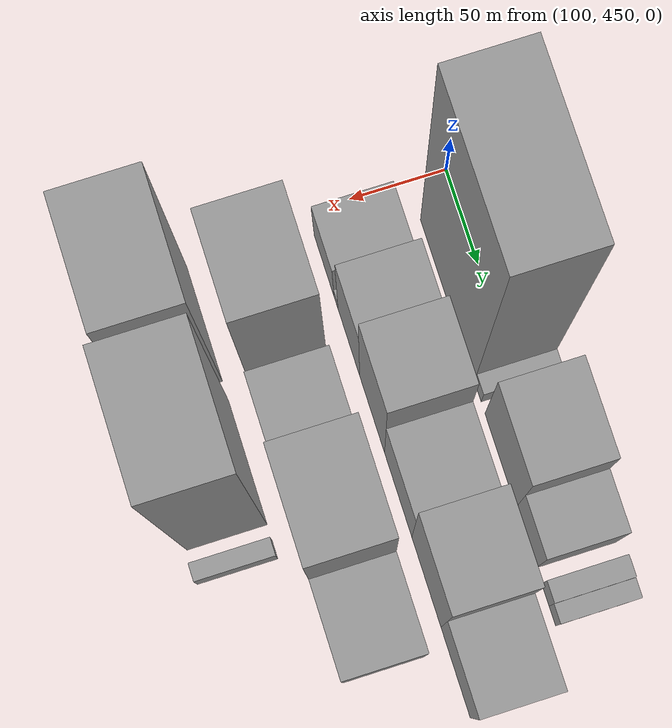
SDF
<sdf version="1.6">
 <world name="default">
  <model name="building_45">
   <static>1</static>
   <pose>100.0000 512.6496 0 0.000000 0.000000 0.000000</pose>
   <link name="link">
    <pose>0 0 112.50 0 0 0</pose>
    <collision name="collision"><geometry><box><size>40.0000 84.5545 225.0000</size></box></geometry></collision>
    <visual name="visual">
     <cast_shadows>0</cast_shadows>
     <geometry><box><size>40.0000 84.5545 225.0000</size></box></geometry>
     <material>
      <script>
       <uri>model://grey_wall/materials/scripts</uri>
       <uri>model://grey_wall/materials/textures</uri>
       <name>vrc/grey_wall</name>
      </script>
     </material>
    </visual>
   </link>
  </model>
  <model name="building_46">
   <static>1</static>
   <pose>100.0000 560.1286 0 0.000000 0.000000 0.000000</pose>
   <link name="link">
    <pose>0 0 10.50 0 0 0</pose>
    <collision name="collision"><geometry><box><size>40.0000 10.4033 21.0000</size></box></geometry></collision>
    <visual name="visual">
     <cast_shadows>0</cast_shadows>
     <geometry><box><size>40.0000 10.4033 21.0000</size></box></geometry>
     <material>
      <script>
       <uri>model://grey_wall/materials/scripts</uri>
       <uri>model://grey_wall/materials/textures</uri>
       <name>vrc/grey_wall</name>
      </script>
     </material>
    </visual>
   </link>
  </model>
  <model name="building_47">
   <static>1</static>
   <pose>100.0000 595.1719 0 0.000000 0.000000 0.000000</pose>
   <link name="link">
    <pose>0 0 45.00 0 0 0</pose>
    <collision name="collision"><geometry><box><size>40.0000 47.6834 90.0000</size></box></geometry></collision>
    <visual name="visual">
     <cast_shadows>0</cast_shadows>
     <geometry><box><size>40.0000 47.6834 90.0000</size></box></geometry>
     <material>
      <script>
       <uri>model://grey_wall/materials/scripts</uri>
       <uri>model://grey_wall/materials/textures</uri>
       <name>vrc/grey_wall</name>
      </script>
     </material>
    </visual>
   </link>
  </model>
  <model name="building_48">
   <static>1</static>
   <pose>100.0000 634.2060 0 0.000000 0.000000 0.000000</pose>
   <link name="link">
    <pose>0 0 27.00 0 0 0</pose>
    <collision name="collision"><geometry><box><size>40.0000 30.3847 54.0000</size></box></geometry></collision>
    <visual name="visual">
     <cast_shadows>0</cast_shadows>
     <geometry><box><size>40.0000 30.3847 54.0000</size></box></geometry>
     <material>
      <script>
       <uri>model://grey_wall/materials/scripts</uri>
       <uri>model://grey_wall/materials/textures</uri>
       <name>vrc/grey_wall</name>
      </script>
     </material>
    </visual>
   </link>
  </model>
  <model name="building_49">
   <static>1</static>
   <pose>100.0000 662.9370 0 0.000000 0.000000 0.000000</pose>
   <link name="link">
    <pose>0 0 13.50 0 0 0</pose>
    <collision name="collision"><geometry><box><size>40.0000 11.0773 27.0000</size></box></geometry></collision>
    <visual name="visual">
     <cast_shadows>0</cast_shadows>
     <geometry><box><size>40.0000 11.0773 27.0000</size></box></geometry>
     <material>
      <script>
       <uri>model://grey_wall/materials/scripts</uri>
       <uri>model://grey_wall/materials/textures</uri>
       <name>vrc/grey_wall</name>
      </script>
     </material>
    </visual>
   </link>
  </model>
  <model name="building_50">
   <static>1</static>
   <pose>100.0000 673.3901 0 0.000000 0.000000 0.000000</pose>
   <link name="link">
    <pose>0 0 12.00 0 0 0</pose>
    <collision name="collision"><geometry><box><size>40.0000 9.8288 24.0000</size></box></geometry></collision>
    <visual name="visual">
     <cast_shadows>0</cast_shadows>
     <geometry><box><size>40.0000 9.8288 24.0000</size></box></geometry>
     <material>
      <script>
       <uri>model://grey_wall/materials/scripts</uri>
       <uri>model://grey_wall/materials/textures</uri>
       <name>vrc/grey_wall</name>
      </script>
     </material>
    </visual>
   </link>
  </model>
  <model name="building_101">
   <static>1</static>
   <pose>152.0000 478.1528 0 0.000000 0.000000 0.000000</pose>
   <link name="link">
    <pose>0 0 27.00 0 0 0</pose>
    <collision name="collision"><geometry><box><size>40.0000 32.0204 54.0000</size></box></geometry></collision>
    <visual name="visual">
     <cast_shadows>0</cast_shadows>
     <geometry><box><size>40.0000 32.0204 54.0000</size></box></geometry>
     <material>
      <script>
       <uri>model://grey_wall/materials/scripts</uri>
       <uri>model://grey_wall/materials/textures</uri>
       <name>vrc/grey_wall</name>
      </script>
     </material>
    </visual>
   </link>
  </model>
  <model name="building_102">
   <static>1</static>
   <pose>152.0000 497.4850 0 0.000000 0.000000 0.000000</pose>
   <link name="link">
    <pose>0 0 7.50 0 0 0</pose>
    <collision name="collision"><geometry><box><size>40.0000 6.6440 15.0000</size></box></geometry></collision>
    <visual name="visual">
     <cast_shadows>0</cast_shadows>
     <geometry><box><size>40.0000 6.6440 15.0000</size></box></geometry>
     <material>
      <script>
       <uri>model://grey_wall/materials/scripts</uri>
       <uri>model://grey_wall/materials/textures</uri>
       <name>vrc/grey_wall</name>
      </script>
     </material>
    </visual>
   </link>
  </model>
  <model name="building_103">
   <static>1</static>
   <pose>152.0000 518.0880 0 0.000000 0.000000 0.000000</pose>
   <link name="link">
    <pose>0 0 46.50 0 0 0</pose>
    <collision name="collision"><geometry><box><size>40.0000 34.5620 93.0000</size></box></geometry></collision>
    <visual name="visual">
     <cast_shadows>0</cast_shadows>
     <geometry><box><size>40.0000 34.5620 93.0000</size></box></geometry>
     <material>
      <script>
       <uri>model://grey_wall/materials/scripts</uri>
       <uri>model://grey_wall/materials/textures</uri>
       <name>vrc/grey_wall</name>
      </script>
     </material>
    </visual>
   </link>
  </model>
  <model name="building_104">
   <static>1</static>
   <pose>152.0000 555.0826 0 0.000000 0.000000 0.000000</pose>
   <link name="link">
    <pose>0 0 63.00 0 0 0</pose>
    <collision name="collision"><geometry><box><size>40.0000 39.4271 126.0000</size></box></geometry></collision>
    <visual name="visual">
     <cast_shadows>0</cast_shadows>
     <geometry><box><size>40.0000 39.4271 126.0000</size></box></geometry>
     <material>
      <script>
       <uri>model://grey_wall/materials/scripts</uri>
       <uri>model://grey_wall/materials/textures</uri>
       <name>vrc/grey_wall</name>
      </script>
     </material>
    </visual>
   </link>
  </model>
  <model name="building_105">
   <static>1</static>
   <pose>152.0000 596.1161 0 0.000000 0.000000 0.000000</pose>
   <link name="link">
    <pose>0 0 40.50 0 0 0</pose>
    <collision name="collision"><geometry><box><size>40.0000 42.6399 81.0000</size></box></geometry></collision>
    <visual name="visual">
     <cast_shadows>0</cast_shadows>
     <geometry><box><size>40.0000 42.6399 81.0000</size></box></geometry>
     <material>
      <script>
       <uri>model://grey_wall/materials/scripts</uri>
       <uri>model://grey_wall/materials/textures</uri>
       <name>vrc/grey_wall</name>
      </script>
     </material>
    </visual>
   </link>
  </model>
  <model name="building_106">
   <static>1</static>
   <pose>152.0000 639.8982 0 0.000000 0.000000 0.000000</pose>
   <link name="link">
    <pose>0 0 60.00 0 0 0</pose>
    <collision name="collision"><geometry><box><size>40.0000 44.9244 120.0000</size></box></geometry></collision>
    <visual name="visual">
     <cast_shadows>0</cast_shadows>
     <geometry><box><size>40.0000 44.9244 120.0000</size></box></geometry>
     <material>
      <script>
       <uri>model://grey_wall/materials/scripts</uri>
       <uri>model://grey_wall/materials/textures</uri>
       <name>vrc/grey_wall</name>
      </script>
     </material>
    </visual>
   </link>
  </model>
  <model name="building_107">
   <static>1</static>
   <pose>152.0000 684.5421 0 0.000000 0.000000 0.000000</pose>
   <link name="link">
    <pose>0 0 37.50 0 0 0</pose>
    <collision name="collision"><geometry><box><size>40.0000 44.3634 75.0000</size></box></geometry></collision>
    <visual name="visual">
     <cast_shadows>0</cast_shadows>
     <geometry><box><size>40.0000 44.3634 75.0000</size></box></geometry>
     <material>
      <script>
       <uri>model://grey_wall/materials/scripts</uri>
       <uri>model://grey_wall/materials/textures</uri>
       <name>vrc/grey_wall</name>
      </script>
     </material>
    </visual>
   </link>
  </model>
  <model name="building_150">
   <static>1</static>
   <pose>204.0000 494.8100 0 0.000000 0.000000 0.000000</pose>
   <link name="link">
    <pose>0 0 67.50 0 0 0</pose>
    <collision name="collision"><geometry><box><size>40.0000 51.0181 135.0000</size></box></geometry></collision>
    <visual name="visual">
     <cast_shadows>0</cast_shadows>
     <geometry><box><size>40.0000 51.0181 135.0000</size></box></geometry>
     <material>
      <script>
       <uri>model://grey_wall/materials/scripts</uri>
       <uri>model://grey_wall/materials/textures</uri>
       <name>vrc/grey_wall</name>
      </script>
     </material>
    </visual>
   </link>
  </model>
  <model name="building_151">
   <static>1</static>
   <pose>204.0000 548.5438 0 0.000000 0.000000 0.000000</pose>
   <link name="link">
    <pose>0 0 34.50 0 0 0</pose>
    <collision name="collision"><geometry><box><size>40.0000 38.4496 69.0000</size></box></geometry></collision>
    <visual name="visual">
     <cast_shadows>0</cast_shadows>
     <geometry><box><size>40.0000 38.4496 69.0000</size></box></geometry>
     <material>
      <script>
       <uri>model://grey_wall/materials/scripts</uri>
       <uri>model://grey_wall/materials/textures</uri>
       <name>vrc/grey_wall</name>
      </script>
     </material>
    </visual>
   </link>
  </model>
  <model name="building_152">
   <static>1</static>
   <pose>204.0000 600.3227 0 0.000000 0.000000 0.000000</pose>
   <link name="link">
    <pose>0 0 73.50 0 0 0</pose>
    <collision name="collision"><geometry><box><size>40.0000 53.1082 147.0000</size></box></geometry></collision>
    <visual name="visual">
     <cast_shadows>0</cast_shadows>
     <geometry><box><size>40.0000 53.1082 147.0000</size></box></geometry>
     <material>
      <script>
       <uri>model://grey_wall/materials/scripts</uri>
       <uri>model://grey_wall/materials/textures</uri>
       <name>vrc/grey_wall</name>
      </script>
     </material>
    </visual>
   </link>
  </model>
  <model name="building_153">
   <static>1</static>
   <pose>204.0000 650.0139 0 0.000000 0.000000 0.000000</pose>
   <link name="link">
    <pose>0 0 39.00 0 0 0</pose>
    <collision name="collision"><geometry><box><size>40.0000 46.2743 78.0000</size></box></geometry></collision>
    <visual name="visual">
     <cast_shadows>0</cast_shadows>
     <geometry><box><size>40.0000 46.2743 78.0000</size></box></geometry>
     <material>
      <script>
       <uri>model://grey_wall/materials/scripts</uri>
       <uri>model://grey_wall/materials/textures</uri>
       <name>vrc/grey_wall</name>
      </script>
     </material>
    </visual>
   </link>
  </model>
  <model name="building_199">
   <static>1</static>
   <pose>256.0000 488.0481 0 0.000000 0.000000 0.000000</pose>
   <link name="link">
    <pose>0 0 90.00 0 0 0</pose>
    <collision name="collision"><geometry><box><size>40.0000 59.3253 180.0000</size></box></geometry></collision>
    <visual name="visual">
     <cast_shadows>0</cast_shadows>
     <geometry><box><size>40.0000 59.3253 180.0000</size></box></geometry>
     <material>
      <script>
       <uri>model://grey_wall/materials/scripts</uri>
       <uri>model://grey_wall/materials/textures</uri>
       <name>vrc/grey_wall</name>
      </script>
     </material>
    </visual>
   </link>
  </model>
  <model name="building_200">
   <static>1</static>
   <pose>256.0000 559.2088 0 0.000000 0.000000 0.000000</pose>
   <link name="link">
    <pose>0 0 103.50 0 0 0</pose>
    <collision name="collision"><geometry><box><size>40.0000 62.9960 207.0000</size></box></geometry></collision>
    <visual name="visual">
     <cast_shadows>0</cast_shadows>
     <geometry><box><size>40.0000 62.9960 207.0000</size></box></geometry>
     <material>
      <script>
       <uri>model://grey_wall/materials/scripts</uri>
       <uri>model://grey_wall/materials/textures</uri>
       <name>vrc/grey_wall</name>
      </script>
     </material>
    </visual>
   </link>
  </model>
  <model name="building_201">
   <static>1</static>
   <pose>256.0000 603.2808 0 0.000000 0.000000 0.000000</pose>
   <link name="link">
    <pose>0 0 10.50 0 0 0</pose>
    <collision name="collision"><geometry><box><size>40.0000 9.1480 21.0000</size></box></geometry></collision>
    <visual name="visual">
     <cast_shadows>0</cast_shadows>
     <geometry><box><size>40.0000 9.1480 21.0000</size></box></geometry>
     <material>
      <script>
       <uri>model://grey_wall/materials/scripts</uri>
       <uri>model://grey_wall/materials/textures</uri>
       <name>vrc/grey_wall</name>
      </script>
     </material>
    </visual>
   </link>
  </model>
 </world>
</sdf>
